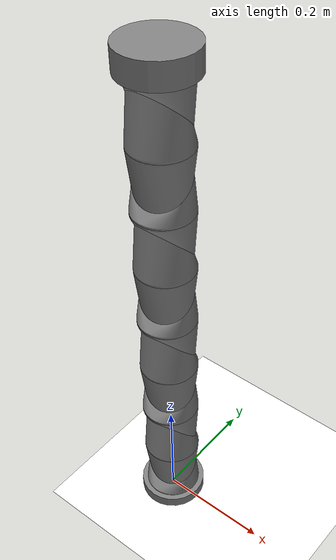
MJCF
<?xml version='1.0' encoding='UTF-8'?>
<mujoco model="zbot">
    <compiler inertiafromgeom="true" angle="degree" autolimits="true" fusestatic="false" />
    <default>
        <geom density="670" />
        <default class="coliision">
            <geom contype="1" conaffinity="0" group="4" type="mesh" mesh="mb" />
            <default class="coliision_a">
                <geom mesh="ma" />
            </default>

            <default class="coliision_b">
                <geom mesh="mb" />
            </default>
        </default>
        <default class="visual">
            <geom contype="0" conaffinity="0" group="1" type="mesh" mesh="mb" />
            <default class="visual_a">
                <geom mesh="ma" />
            </default>

            <default class="visual_b">
                <geom mesh="mb" />
            </default>
        </default>
        <joint range="-180 180" limited="true" />
    </default>

    <asset>
        <mesh name="ma" file="ma.obj" />
        <mesh name="mb" file="mb.obj" />
        <material name="floor" reflectance=".1" />
    </asset>

    <worldbody>
        <geom type="plane" size="5 5 .01" rgba="1 1 1 1" material="floor" contype="127" conaffinity="127" />
        <body name="body_0" pos="0 0 0.02" euler="0 0 0">
            <freejoint />
            <geom class="visual_a" pos="0 0 0" />
            <geom type="cylinder" size="0.060 0.02" pos="0.0 0.0 -0.02" density="400" contype="0" conaffinity="0" group="1" />

            <body name="body_1" pos="0 0 0.106">
                <joint name="joint_0" type="hinge" pos="0 0 -0.053" axis="0 -1 1" />
                <geom class="visual_b" pos="0 0 -0.106" />
                <geom class="visual_a" pos="0 0 0.0" euler="0 0 180" />
                <body name="body_2" pos="0 0 0.106" euler="0 0 180">
                    <joint name="joint_1" type="hinge" pos="0 0 -0.053" axis="0 -1 1" />
                    <geom class="visual_b" pos="0 0 -0.106" />
                    <geom class="visual_a" pos="0 0 0.0" euler="0 0 180" />
                    <body name="body_3" pos="0 0 0.106" euler="0 0 180">
                        <joint name="joint_2" type="hinge" pos="0 0 -0.053" axis="0 -1 1" />
                        <geom class="visual_b" pos="0 0 -0.106" />
                        <geom class="visual_a" pos="0 0 0.0" euler="0 0 180" />
                        <body name="body_4" pos="0 0 0.106" euler="0 0 180">
                            <joint name="joint_3" type="hinge" pos="0 0 -0.053" axis="0 -1 1" />
                            <geom class="visual_b" pos="0 0 -0.106" />
                            <geom class="visual_a" pos="0 0 0.0" euler="0 0 180" />
                            <body name="body_5" pos="0 0 0.106" euler="0 0 180">
                                <joint name="joint_4" type="hinge" pos="0 0 -0.053" axis="0 -1 1" />
                                <geom class="visual_b" pos="0 0 -0.106" />
                                <geom class="visual_a" pos="0 0 0.0" euler="0 0 180" />
                                <body name="body_6" pos="0 0 0.106" euler="0 0 180">
                                    <joint name="joint_5" type="hinge" pos="0 0 -0.053" axis="0 -1 1" />
                                    <geom class="visual_b" pos="0 0 -0.106" />
                                    <geom class="visual_a" pos="0 0 0.0" euler="0 0 180" />
                                    <body name="body_7" pos="0 0 0.106" euler="0 0 180">
                                        <joint name="joint_6" type="hinge" pos="0 0 -0.053" axis="0 -1 1" />
                                        <geom class="visual_b" pos="0 0 -0.106" />
                                        <geom class="visual_a" pos="0 0 0.0" euler="0 0 180" />
                                        <body name="body_8" pos="0 0 0.106" euler="0 0 180">
                                            <joint name="joint_7" type="hinge" pos="0 0 -0.053" axis="0 -1 1" />
                                            <geom class="visual_b" pos="0 0 -0.106" />
                                            <geom type="cylinder" size="0.060 0.02" pos="0.0 0.0 0.02" density="400" contype="0" conaffinity="0" group="1" />
                                        </body>
                                    </body>
                                </body>
                            </body>
                        </body>
                    </body>
                </body>
            </body>
        </body>
    </worldbody>
<option timestep="0.0166" gravity="0 0 -9.81" integrator="implicitfast" /><actuator><position name="joint_0" joint="joint_0" kp="10" forcelimited="false" ctrllimited="false" /><position name="joint_1" joint="joint_1" kp="10" forcelimited="false" ctrllimited="false" /><position name="joint_2" joint="joint_2" kp="10" forcelimited="false" ctrllimited="false" /><position name="joint_3" joint="joint_3" kp="10" forcelimited="false" ctrllimited="false" /><position name="joint_4" joint="joint_4" kp="10" forcelimited="false" ctrllimited="false" /><position name="joint_5" joint="joint_5" kp="10" forcelimited="false" ctrllimited="false" /><position name="joint_6" joint="joint_6" kp="10" forcelimited="false" ctrllimited="false" /><position name="joint_7" joint="joint_7" kp="10" forcelimited="false" ctrllimited="false" /></actuator><sensor><framequat name="rl_base_quat" objtype="xbody" objname="body_4" /><frameangvel name="rl_base_angvel" objtype="xbody" objname="body_4" /><framepos name="rl_base_pos" objtype="xbody" objname="body_4" /><framelinvel name="rl_base_linvel" objtype="xbody" objname="body_4" /></sensor><keyframe><key name="initial" qpos="-0.10413286834955215 0.004252854734659195 0.041615262627601624 0.9999383091926575 -4.2684208892751485e-05 0.00891477894037962 -0.006627199240028858 0.5203649997711182 0.28371500968933105 -1.346060037612915 1.237149953842163 -1.2321900129318237 1.3736300468444824 -0.27039799094200134 -0.5447099804878235" ctrl="0.5203649997711182 0.28371500968933105 -1.346060037612915 1.237149953842163 -1.2321900129318237 1.3736300468444824 -0.27039799094200134 -0.5447099804878235" /></keyframe></mujoco>
